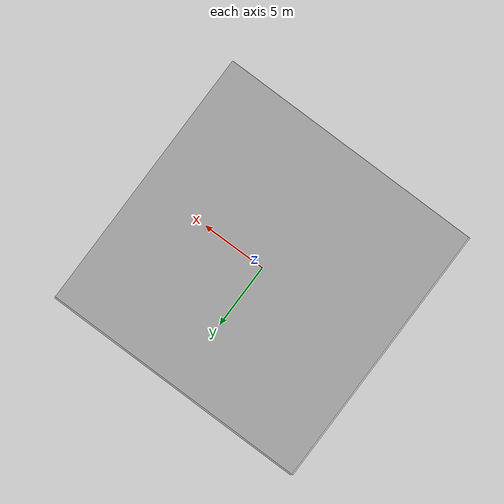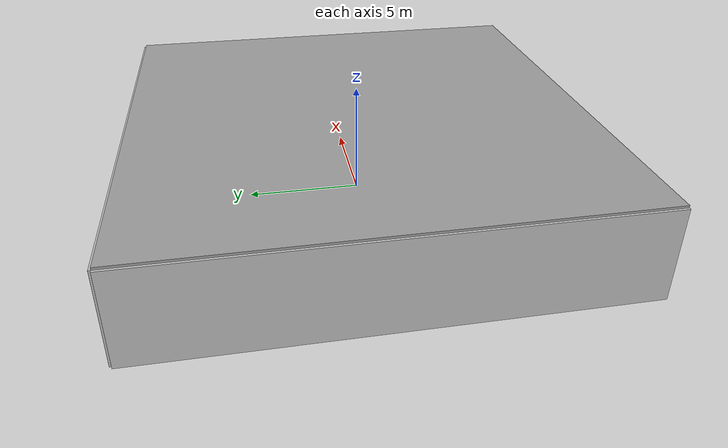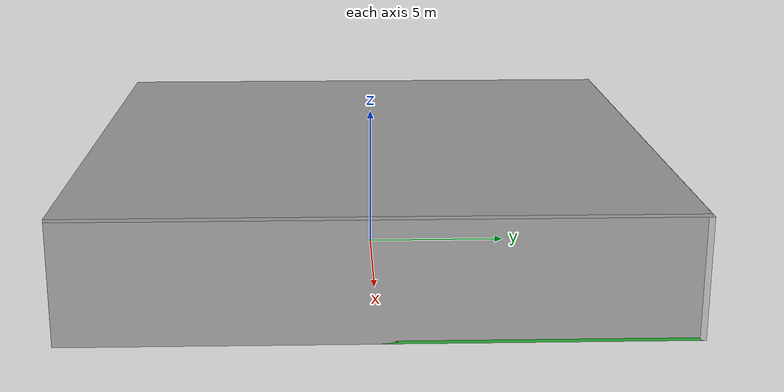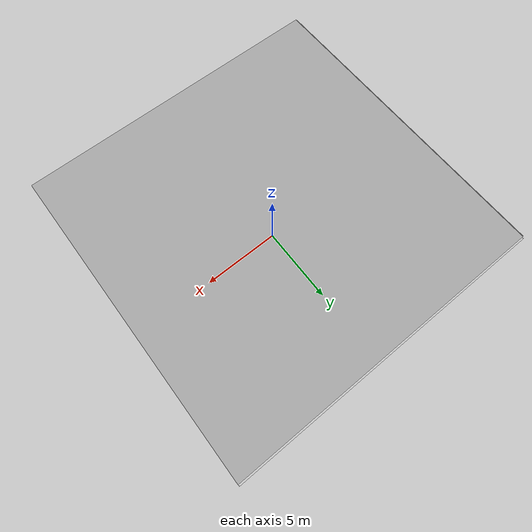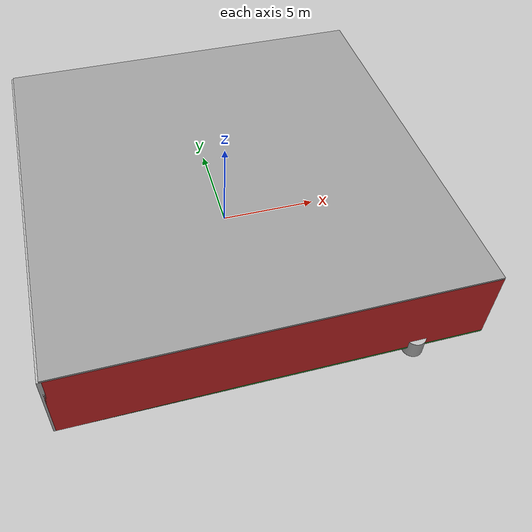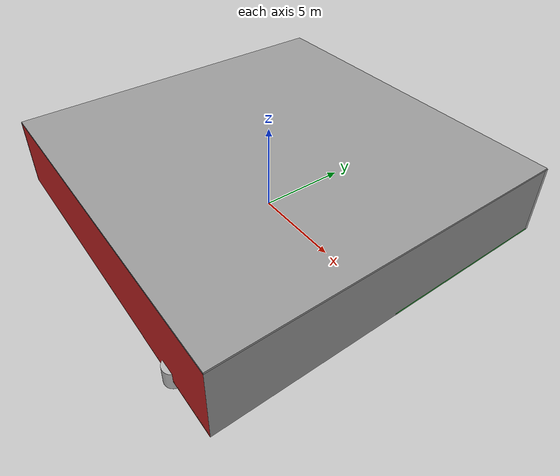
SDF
<sdf version="1.4">
 <world name="default">
  <physics type="ode">
   <max_step_size>0.001</max_step_size>
   <real_time_factor>1</real_time_factor>
   <real_time_update_rate>1000</real_time_update_rate>
   <gravity>0 0 -9.8</gravity>
  </physics>
  <scene><ambient>0.4 0.4 0.4 1</ambient><background>0.7 0.7 0.7 1</background><shadows>1</shadows></scene>
  <model name="Surrounding">
   <static>1</static>
   <link name="Ceiling">
    <collision name="Ceiling_Collision"><geometry><box><size>20 20 0.1</size></box></geometry></collision>
    <visual name="Ceiling_Visual">
     <geometry><box><size>20 20 0.1</size></box></geometry>
     <material>
      <script><uri>file://media/materials/scripts/gazebo.material</uri><name>Gazebo/GreyGradientSky</name></script>
     </material>
    </visual>
    <pose>0 0 4.05 0 0 0</pose>
   </link>
   <link name="Wall_South">
    <collision name="Wall_South_Collision">
     <geometry><box><size>20 0 4</size></box></geometry>
     <pose>0 0 2 0 -0 0</pose>
    </collision>
    <visual name="Wall_South_Visual">
     <pose>0 0 2 0 -0 0</pose>
     <geometry><box><size>20 0 4</size></box></geometry>
     <material>
      <script><uri>file://media/materials/scripts/gazebo.material</uri><name>Gazebo/RedGlow</name></script>
     </material>
    </visual>
    <velocity_decay><linear>0</linear><angular>0</angular></velocity_decay>
    <pose>0 -10 0 0 -0 0</pose>
   </link>
   <link name="Wall_East">
    <collision name="Wall_21_Collision">
     <geometry><box><size>20 0 4</size></box></geometry>
     <pose>0 0 2 0 -0 0</pose>
    </collision>
    <visual name="Wall_21_Visual">
     <pose>0 0 2 0 -0 0</pose>
     <geometry><box><size>20 0 4</size></box></geometry>
     <material>
      <script><uri>file://media/materials/scripts/gazebo.material</uri><name>Gazebo/Grey</name></script>
     </material>
    </visual>
    <velocity_decay><linear>0</linear><angular>0</angular></velocity_decay>
    <pose>10 0 0 0 -0 1.5708</pose>
   </link>
   <link name="Wall_North">
    <collision name="Wall_22_Collision">
     <geometry><box><size>20 0.2 4</size></box></geometry>
     <pose>0 0 2 0 -0 0</pose>
    </collision>
    <visual name="Wall_22_Visual">
     <pose>0 0 2 0 -0 0</pose>
     <geometry><box><size>20 0.2 4</size></box></geometry>
     <material>
      <script><uri>file://media/materials/scripts/gazebo.material</uri><name>Gazebo/JointAnchor</name></script>
     </material>
    </visual>
    <velocity_decay><linear>0</linear><angular>0</angular></velocity_decay>
    <pose>0 10 0 0 -0 0</pose>
   </link>
   <link name="Wall_West">
    <collision name="Wall_23_Collision">
     <geometry><box><size>20 0.2 4</size></box></geometry>
     <pose>0 0 2 0 -0 0</pose>
    </collision>
    <visual name="Wall_23_Visual">
     <pose>0 0 2 0 -0 0</pose>
     <geometry><box><size>20 0.2 4</size></box></geometry>
     <material>
      <script><uri>file://media/materials/scripts/gazebo.material</uri><name>Gazebo/LightOff</name></script>
     </material>
    </visual>
    <velocity_decay><linear>0</linear><angular>0</angular></velocity_decay>
    <pose>-10 0 0 0 0 -1.5708</pose>
   </link>
   <link name="Ground_link">
    <collision name="collision">
     <pose>0 0 .05 0 -0 0</pose>
     <geometry><box><size>20 20 0.1</size></box></geometry>
    </collision>
    <visual name="visual">
     <pose>0 0 .05 0 -0 0</pose>
     <geometry><box><size>20 20 0.1</size></box></geometry>
     <material>
      <script><uri>file://media/materials/scripts/gazebo.material</uri><name>Gazebo/GreenGlow</name></script>
     </material>
    </visual>
   </link>
   <static>1</static>
  </model>
  <spherical_coordinates>
   <surface_model>EARTH_WGS84</surface_model>
   <latitude_deg>0</latitude_deg>
   <longitude_deg>0</longitude_deg>
   <elevation>0</elevation>
   <heading_deg>0</heading_deg>
  </spherical_coordinates>
  <light name="lightball_0" type="diffuse">
   <diffuse>0.8 0.8 0.8 1</diffuse>
   <specular>0.2 0.2 0.2 1</specular>
   <attenuation>
    <range>100</range>
    <constant>0.7</constant>
    <linear>0.01</linear>
    <quadratic>0.001</quadratic>
   </attenuation>
   <direction>-0.5 0.1 -0.9</direction>
   <pose>8.01285287927 -5.76693316817 3.16870741361 0 0 0</pose>
  </light>
  <light name="lightball_1" type="diffuse">
   <diffuse>0.8 0.8 0.8 1</diffuse>
   <specular>0.2 0.2 0.2 1</specular>
   <attenuation>
    <range>100</range>
    <constant>0.7</constant>
    <linear>0.01</linear>
    <quadratic>0.001</quadratic>
   </attenuation>
   <direction>-0.5 0.1 -0.9</direction>
   <pose>-0.716892738349 -3.94276169819 3.87939923017 0 0 0</pose>
  </light>
  <light name="lightball_2" type="diffuse">
   <diffuse>0.8 0.8 0.8 1</diffuse>
   <specular>0.2 0.2 0.2 1</specular>
   <attenuation>
    <range>100</range>
    <constant>0.7</constant>
    <linear>0.01</linear>
    <quadratic>0.001</quadratic>
   </attenuation>
   <direction>-0.5 0.1 -0.9</direction>
   <pose>-9.5040901944 6.60082653106 1.38211581653 0 0 0</pose>
  </light>
  <light name="lightball_3" type="diffuse">
   <diffuse>0.8 0.8 0.8 1</diffuse>
   <specular>0.2 0.2 0.2 1</specular>
   <attenuation>
    <range>100</range>
    <constant>0.7</constant>
    <linear>0.01</linear>
    <quadratic>0.001</quadratic>
   </attenuation>
   <direction>-0.5 0.1 -0.9</direction>
   <pose>9.6864273088 -2.98256869483 2.20798482973 0 0 0</pose>
  </light>
  <light name="lightball_4" type="diffuse">
   <diffuse>0.8 0.8 0.8 1</diffuse>
   <specular>0.2 0.2 0.2 1</specular>
   <attenuation>
    <range>100</range>
    <constant>0.7</constant>
    <linear>0.01</linear>
    <quadratic>0.001</quadratic>
   </attenuation>
   <direction>-0.5 0.1 -0.9</direction>
   <pose>-9.90928869338 0.265184544329 2.58080638905 0 0 0</pose>
  </light>
  <light name="lightball_5" type="diffuse">
   <diffuse>0.8 0.8 0.8 1</diffuse>
   <specular>0.2 0.2 0.2 1</specular>
   <attenuation>
    <range>100</range>
    <constant>0.7</constant>
    <linear>0.01</linear>
    <quadratic>0.001</quadratic>
   </attenuation>
   <direction>-0.5 0.1 -0.9</direction>
   <pose>3.04020252455 -6.88271735424 1.34487833393 0 0 0</pose>
  </light>
  <light name="lightball_6" type="diffuse">
   <diffuse>0.8 0.8 0.8 1</diffuse>
   <specular>0.2 0.2 0.2 1</specular>
   <attenuation>
    <range>100</range>
    <constant>0.7</constant>
    <linear>0.01</linear>
    <quadratic>0.001</quadratic>
   </attenuation>
   <direction>-0.5 0.1 -0.9</direction>
   <pose>-0.420684994171 -8.44436157118 1.57316104376 0 0 0</pose>
  </light>
  <light name="lightball_7" type="diffuse">
   <diffuse>0.8 0.8 0.8 1</diffuse>
   <specular>0.2 0.2 0.2 1</specular>
   <attenuation>
    <range>100</range>
    <constant>0.7</constant>
    <linear>0.01</linear>
    <quadratic>0.001</quadratic>
   </attenuation>
   <direction>-0.5 0.1 -0.9</direction>
   <pose>-4.57463092575 -0.0536252018973 1.76569467777 0 0 0</pose>
  </light>
  <light name="lightball_8" type="diffuse">
   <diffuse>0.8 0.8 0.8 1</diffuse>
   <specular>0.2 0.2 0.2 1</specular>
   <attenuation>
    <range>100</range>
    <constant>0.7</constant>
    <linear>0.01</linear>
    <quadratic>0.001</quadratic>
   </attenuation>
   <direction>-0.5 0.1 -0.9</direction>
   <pose>-7.20120112379 5.87665701056 3.11319358259 0 0 0</pose>
  </light>
  <light name="lightball_9" type="diffuse">
   <diffuse>0.8 0.8 0.8 1</diffuse>
   <specular>0.2 0.2 0.2 1</specular>
   <attenuation>
    <range>100</range>
    <constant>0.7</constant>
    <linear>0.01</linear>
    <quadratic>0.001</quadratic>
   </attenuation>
   <direction>-0.5 0.1 -0.9</direction>
   <pose>-6.36810926452 -1.65025616981 0.555622234652 0 0 0</pose>
  </light>
  <light name="lightball_10" type="diffuse">
   <diffuse>0.8 0.8 0.8 1</diffuse>
   <specular>0.2 0.2 0.2 1</specular>
   <attenuation>
    <range>100</range>
    <constant>0.7</constant>
    <linear>0.01</linear>
    <quadratic>0.001</quadratic>
   </attenuation>
   <direction>-0.5 0.1 -0.9</direction>
   <pose>-2.55490692036 3.74971999922 0.60578152872 0 0 0</pose>
  </light>
  <light name="lightball_11" type="diffuse">
   <diffuse>0.8 0.8 0.8 1</diffuse>
   <specular>0.2 0.2 0.2 1</specular>
   <attenuation>
    <range>100</range>
    <constant>0.7</constant>
    <linear>0.01</linear>
    <quadratic>0.001</quadratic>
   </attenuation>
   <direction>-0.5 0.1 -0.9</direction>
   <pose>1.69734297293 -2.19230061469 1.53771528517 0 0 0</pose>
  </light>
  <light name="lightball_12" type="diffuse">
   <diffuse>0.8 0.8 0.8 1</diffuse>
   <specular>0.2 0.2 0.2 1</specular>
   <attenuation>
    <range>100</range>
    <constant>0.7</constant>
    <linear>0.01</linear>
    <quadratic>0.001</quadratic>
   </attenuation>
   <direction>-0.5 0.1 -0.9</direction>
   <pose>0.794833036642 4.98643828698 1.24767403551 0 0 0</pose>
  </light>
  <light name="lightball_13" type="diffuse">
   <diffuse>0.8 0.8 0.8 1</diffuse>
   <specular>0.2 0.2 0.2 1</specular>
   <attenuation>
    <range>100</range>
    <constant>0.7</constant>
    <linear>0.01</linear>
    <quadratic>0.001</quadratic>
   </attenuation>
   <direction>-0.5 0.1 -0.9</direction>
   <pose>6.48657277407 -9.82854805267 3.05846505188 0 0 0</pose>
  </light>
  <include>
   <uri>model://construction_cone</uri>
   <pose>-4.73856441648 1.71975505511 0 0 0 0.562758769705</pose>
  </include>
  <include><uri>model://cabinet</uri><pose>-2.0477824837 7.63529147653 0 0 0 1.80968390653</pose></include>
  <include>
   <uri>model://construction_cone</uri>
   <pose>4.51412963525 -1.87189501218 0 0 0 2.83914569475</pose>
  </include>
  <include>
   <uri>model://textured_shapes</uri>
   <pose>6.73193620216 -8.25800792441 0 0 0 3.07284861368</pose>
  </include>
 </world>
</sdf>

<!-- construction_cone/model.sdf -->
<sdf version="1.5">
  <model name="Construction Cone">
    <link name="link">
      <collision name="collision">
        <geometry>
          <mesh>
            <scale>10 10 10</scale>
            <uri>file://isr-testbed/construction_cone/meshes/construction_cone.dae</uri>
          </mesh>
        </geometry>
      </collision>
      <visual name="visual">
        <geometry>
          <mesh>
            <scale>10 10 10</scale>
            <uri>file://isr-testbed/construction_cone/meshes/construction_cone.dae</uri>
          </mesh>
        </geometry>
      </visual>
    </link>
  </model>
</sdf>

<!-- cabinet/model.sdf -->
<sdf version="1.5">
  <model name="cabinet">
    <static>true</static>
    <link name="cabinet_bottom_plate">
      <inertial>
        <pose>0 0 -1 0 0 0</pose>
        <inertia>
          <ixx>2.050000</ixx>
          <ixy>0</ixy>
          <ixz>0</ixz>
          <iyy>2.050000</iyy>
          <iyz>0</iyz>
          <izz>2.050000</izz>
        </inertia>
        <mass>25.000000</mass>
      </inertial>
      <collision name="cabinet_bottom_plate_geom">
        <pose>0 0 0.010000 0 0 0</pose>
        <geometry>
          <box>
            <size>0.450000 0.450000 0.020000</size>
          </box>
        </geometry>
      </collision>
      <visual name="cabinet_bottom_plate_geom_visual">
        <pose>0 0 0.010000 0 0 0</pose>
        <geometry>
          <box>
            <size>0.450000 0.450000 0.020000</size>
          </box>
        </geometry>
        <material>
          <script>
            <uri>model://media/materials/scripts/gazebo.material</uri>
            <name>Gazebo/Wood</name>
          </script>
        </material>
      </visual>
      <collision name="cabinet_bottom_plate_geom_cabinet_back_plate">
        <pose>0.235000 0 0.510000 0 0 0</pose>
        <geometry>
          <box>
            <size>0.020000 0.450000 1.020000</size>
          </box>
        </geometry>
      </collision>
      <visual name="cabinet_bottom_plate_geom_cabinet_back_plate_visual">
        <pose>0.235000 0 0.510000 0 0 0</pose>
        <geometry>
          <box>
            <size>0.020000 0.450000 1.020000</size>
          </box>
        </geometry>
        <material>
          <script>
            <uri>model://media/materials/scripts/gazebo.material</uri>
            <name>Gazebo/Wood</name>
          </script>
        </material>
      </visual>
      <collision name="cabinet_bottom_plate_geom_cabinet_left_plate">
        <pose>0 0.235000 0.510000 0 0 0</pose>
        <geometry>
          <box>
            <size>0.450000 0.020000 1.020000</size>
          </box>
        </geometry>
      </collision>
      <visual name="cabinet_bottom_plate_geom_cabinet_left_plate_visual">
        <pose>0 0.235000 0.510000 0 0 0</pose>
        <geometry>
          <box>
            <size>0.450000 0.020000 1.020000</size>
          </box>
        </geometry>
        <material>
          <script>
            <uri>model://media/materials/scripts/gazebo.material</uri>
            <name>Gazebo/Wood</name>
          </script>
        </material>
      </visual>
      <collision name="cabinet_bottom_plate_geom_cabinet_middle_plate">
        <pose>0 0 0.510000 0 0 0</pose>
        <geometry>
          <box>
            <size>0.450000 0.450000 0.020000</size>
          </box>
        </geometry>
      </collision>
      <visual name="cabinet_bottom_plate_geom_cabinet_middle_plate_visual">
        <pose>0 0 0.510000 0 0 0</pose>
        <geometry>
          <box>
            <size>0.450000 0.450000 0.020000</size>
          </box>
        </geometry>
        <material>
          <script>
            <uri>model://media/materials/scripts/gazebo.material</uri>
            <name>Gazebo/Wood</name>
          </script>
        </material>
      </visual>
      <collision name="cabinet_bottom_plate_geom_cabinet_right_plate">
        <pose>0 -0.235000 0.510000 0 0 0</pose>
        <geometry>
          <box>
            <size>0.450000 0.020000 1.020000</size>
          </box>
        </geometry>
      </collision>
      <visual name="cabinet_bottom_plate_geom_cabinet_right_plate_visual">
        <pose>0 -0.235000 0.510000 0 0 0</pose>
        <geometry>
          <box>
            <size>0.450000 0.020000 1.020000</size>
          </box>
        </geometry>
        <material>
          <script>
            <uri>model://media/materials/scripts/gazebo.material</uri>
            <name>Gazebo/Wood</name>
          </script>
        </material>
      </visual>
      <collision name="cabinet_bottom_plate_geom_cabinet_top_plate">
        <pose>0 0 1.010000 0 0 0</pose>
        <geometry>
          <box>
            <size>0.450000 0.450000 0.020000</size>
          </box>
        </geometry>
      </collision>
      <visual name="cabinet_bottom_plate_geom_cabinet_top_plate_visual">
        <pose>0 0 1.010000 0 0 0</pose>
        <geometry>
          <box>
            <size>0.450000 0.450000 0.020000</size>
          </box>
        </geometry>
        <material>
          <script>
            <uri>model://media/materials/scripts/gazebo.material</uri>
            <name>Gazebo/Wood</name>
          </script>
        </material>
      </visual>
    </link>
  </model>
</sdf>

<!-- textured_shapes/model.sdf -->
<sdf version="1.6">
  <model name="textured_shapes">
    <pose>0 0 0.5 0 0 0</pose>
    <link name="box">
      <pose>0 -1.5 0 0 0 0</pose>
      <collision name="collision">
        <geometry>
          <box>
            <size>1 1 1</size>
          </box>
        </geometry>
      </collision>
      <visual name="visual">
        <geometry>
          <box>
            <size>1 1 1</size>
          </box>
        </geometry>
        <material>
          <script>
            <uri>model://../model_source/models/textured_shapes/materials/scripts</uri>
            <uri>model://../model_source/models/textured_shapes/materials/textures</uri>
            <name>TexturedShape/Squares</name>
          </script>
        </material>
      </visual>
    </link>
    <link name="sphere">
      <collision name="collision">
        <geometry>
          <sphere>
            <radius>0.5</radius>
          </sphere>
        </geometry>
      </collision>
      <visual name="visual">
        <geometry>
          <sphere>
            <radius>0.5</radius>
          </sphere>
        </geometry>
        <material>
          <script>
            <uri>model://../model_source/models/textured_shapes/materials/scripts</uri>
            <uri>model://../model_source/models/textured_shapes/materials/textures</uri>
            <name>TexturedShape/Squares</name>
          </script>
        </material>
      </visual>
    </link>
    <link name="cylinder">
      <pose>0 1.5 0 0 0 0</pose>
      <collision name="collision">
        <geometry>
          <cylinder>
            <radius>0.5</radius>
            <length>1</length>
          </cylinder>
        </geometry>
      </collision>
      <visual name="visual">
        <geometry>
          <cylinder>
            <radius>0.5</radius>
            <length>1</length>
          </cylinder>
        </geometry>
        <material>
          <script>
            <uri>model://../model_source/models/textured_shapes/materials/scripts</uri>
            <uri>model://../model_source/models/textured_shapes/materials/textures</uri>
            <name>TexturedShape/Squares</name>
          </script>
        </material>
      </visual>
    </link>
  </model>
</sdf>
